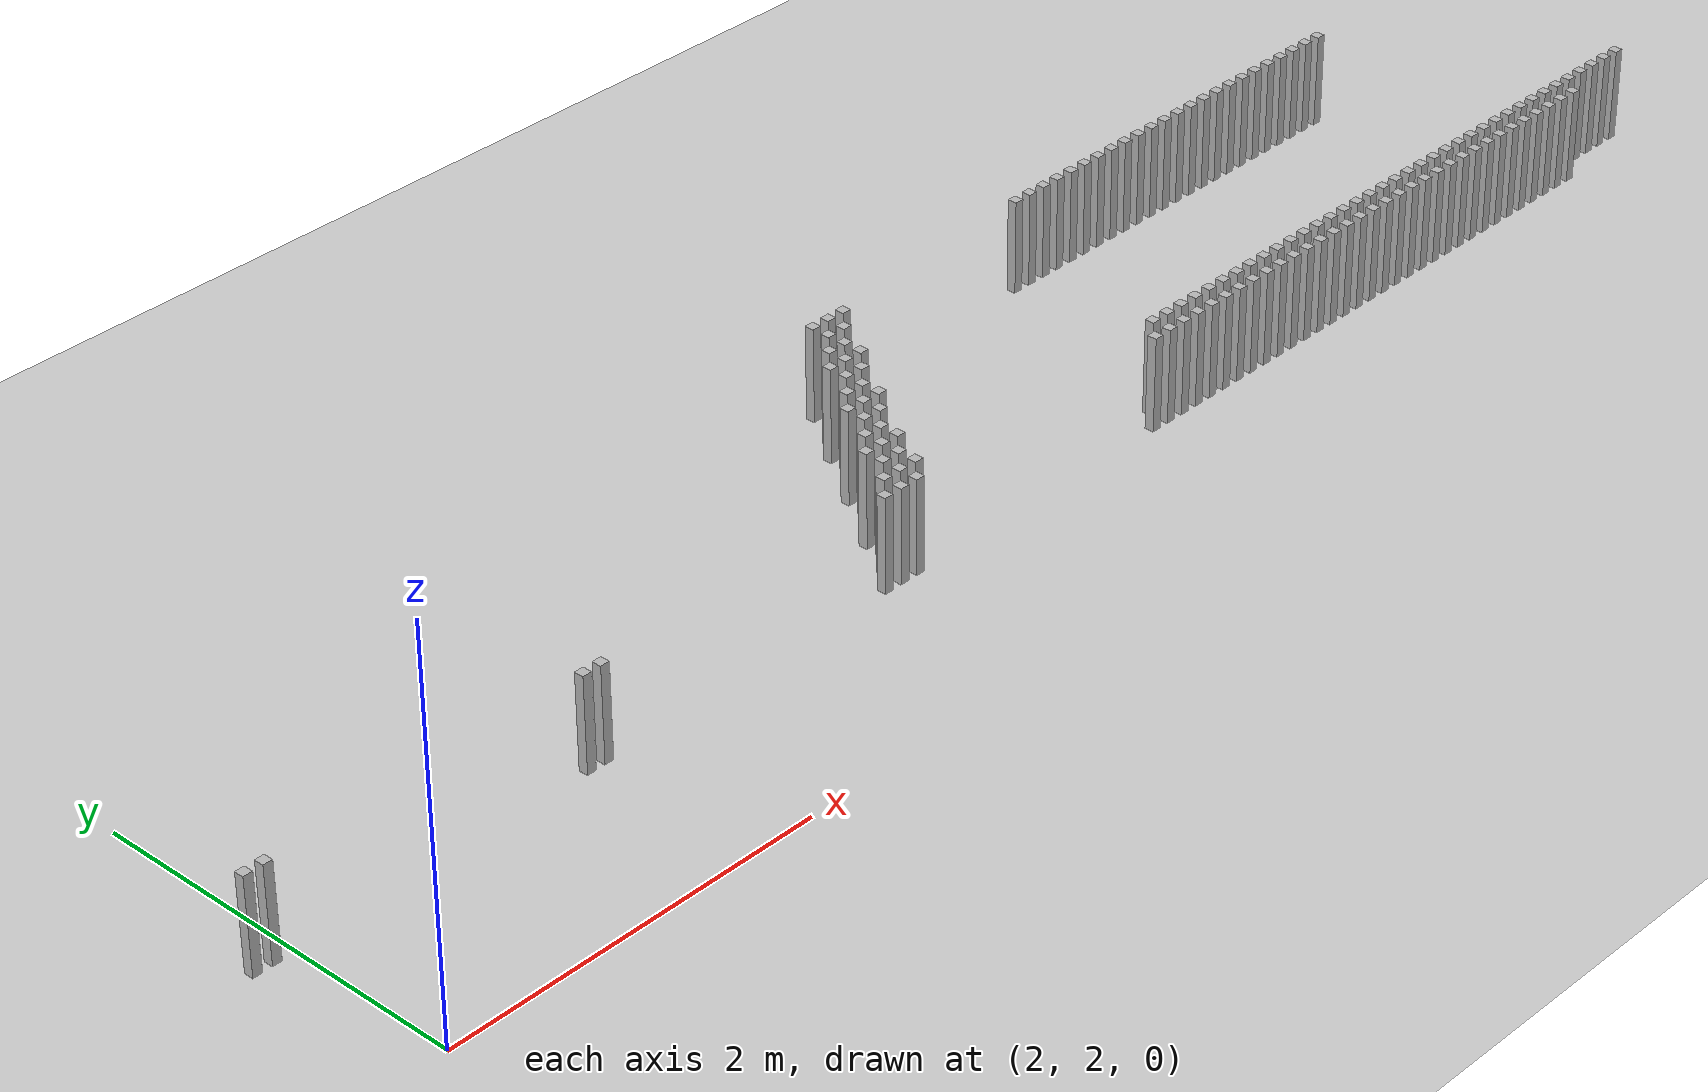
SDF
<sdf version="1.6">
 <world name="default_world">
  <include><uri>model://sun</uri></include>
  <include><uri>model://ground_plane</uri></include>
  <model name="wall_525">
   <static>true</static>
   <link name="link">
    <collision name="collision"><geometry><box><size>0.05 0.05 0.5</size></box></geometry></collision>
    <visual name="visual"><geometry><box><size>0.05 0.05 0.5</size></box></geometry></visual>
    <pose>7.7 4.2 0.25 0 0 0</pose>
   </link>
  </model>
  <model name="wall_526">
   <static>true</static>
   <link name="link">
    <collision name="collision"><geometry><box><size>0.05 0.05 0.5</size></box></geometry></collision>
    <visual name="visual"><geometry><box><size>0.05 0.05 0.5</size></box></geometry></visual>
    <pose>7.800000000000001 4.2 0.25 0 0 0</pose>
   </link>
  </model>
  <model name="wall_527">
   <static>true</static>
   <link name="link">
    <collision name="collision"><geometry><box><size>0.05 0.05 0.5</size></box></geometry></collision>
    <visual name="visual"><geometry><box><size>0.05 0.05 0.5</size></box></geometry></visual>
    <pose>7.9 4.2 0.25 0 0 0</pose>
   </link>
  </model>
  <model name="wall_528">
   <static>true</static>
   <link name="link">
    <collision name="collision"><geometry><box><size>0.05 0.05 0.5</size></box></geometry></collision>
    <visual name="visual"><geometry><box><size>0.05 0.05 0.5</size></box></geometry></visual>
    <pose>8.0 4.2 0.25 0 0 0</pose>
   </link>
  </model>
  <model name="wall_529">
   <static>true</static>
   <link name="link">
    <collision name="collision"><geometry><box><size>0.05 0.05 0.5</size></box></geometry></collision>
    <visual name="visual"><geometry><box><size>0.05 0.05 0.5</size></box></geometry></visual>
    <pose>8.1 4.2 0.25 0 0 0</pose>
   </link>
  </model>
  <model name="wall_530">
   <static>true</static>
   <link name="link">
    <collision name="collision"><geometry><box><size>0.05 0.05 0.5</size></box></geometry></collision>
    <visual name="visual"><geometry><box><size>0.05 0.05 0.5</size></box></geometry></visual>
    <pose>8.200000000000001 4.2 0.25 0 0 0</pose>
   </link>
  </model>
  <model name="wall_531">
   <static>true</static>
   <link name="link">
    <collision name="collision"><geometry><box><size>0.05 0.05 0.5</size></box></geometry></collision>
    <visual name="visual"><geometry><box><size>0.05 0.05 0.5</size></box></geometry></visual>
    <pose>8.3 4.2 0.25 0 0 0</pose>
   </link>
  </model>
  <model name="wall_532">
   <static>true</static>
   <link name="link">
    <collision name="collision"><geometry><box><size>0.05 0.05 0.5</size></box></geometry></collision>
    <visual name="visual"><geometry><box><size>0.05 0.05 0.5</size></box></geometry></visual>
    <pose>8.4 4.2 0.25 0 0 0</pose>
   </link>
  </model>
  <model name="wall_533">
   <static>true</static>
   <link name="link">
    <collision name="collision"><geometry><box><size>0.05 0.05 0.5</size></box></geometry></collision>
    <visual name="visual"><geometry><box><size>0.05 0.05 0.5</size></box></geometry></visual>
    <pose>8.5 4.2 0.25 0 0 0</pose>
   </link>
  </model>
  <model name="wall_534">
   <static>true</static>
   <link name="link">
    <collision name="collision"><geometry><box><size>0.05 0.05 0.5</size></box></geometry></collision>
    <visual name="visual"><geometry><box><size>0.05 0.05 0.5</size></box></geometry></visual>
    <pose>8.6 4.2 0.25 0 0 0</pose>
   </link>
  </model>
  <model name="wall_535">
   <static>true</static>
   <link name="link">
    <collision name="collision"><geometry><box><size>0.05 0.05 0.5</size></box></geometry></collision>
    <visual name="visual"><geometry><box><size>0.05 0.05 0.5</size></box></geometry></visual>
    <pose>8.700000000000001 4.2 0.25 0 0 0</pose>
   </link>
  </model>
  <model name="wall_536">
   <static>true</static>
   <link name="link">
    <collision name="collision"><geometry><box><size>0.05 0.05 0.5</size></box></geometry></collision>
    <visual name="visual"><geometry><box><size>0.05 0.05 0.5</size></box></geometry></visual>
    <pose>8.8 4.2 0.25 0 0 0</pose>
   </link>
  </model>
  <model name="wall_537">
   <static>true</static>
   <link name="link">
    <collision name="collision"><geometry><box><size>0.05 0.05 0.5</size></box></geometry></collision>
    <visual name="visual"><geometry><box><size>0.05 0.05 0.5</size></box></geometry></visual>
    <pose>8.9 4.2 0.25 0 0 0</pose>
   </link>
  </model>
  <model name="wall_538">
   <static>true</static>
   <link name="link">
    <collision name="collision"><geometry><box><size>0.05 0.05 0.5</size></box></geometry></collision>
    <visual name="visual"><geometry><box><size>0.05 0.05 0.5</size></box></geometry></visual>
    <pose>9.0 4.2 0.25 0 0 0</pose>
   </link>
  </model>
  <model name="wall_539">
   <static>true</static>
   <link name="link">
    <collision name="collision"><geometry><box><size>0.05 0.05 0.5</size></box></geometry></collision>
    <visual name="visual"><geometry><box><size>0.05 0.05 0.5</size></box></geometry></visual>
    <pose>9.1 4.2 0.25 0 0 0</pose>
   </link>
  </model>
  <model name="wall_540">
   <static>true</static>
   <link name="link">
    <collision name="collision"><geometry><box><size>0.05 0.05 0.5</size></box></geometry></collision>
    <visual name="visual"><geometry><box><size>0.05 0.05 0.5</size></box></geometry></visual>
    <pose>9.200000000000001 4.2 0.25 0 0 0</pose>
   </link>
  </model>
  <model name="wall_541">
   <static>true</static>
   <link name="link">
    <collision name="collision"><geometry><box><size>0.05 0.05 0.5</size></box></geometry></collision>
    <visual name="visual"><geometry><box><size>0.05 0.05 0.5</size></box></geometry></visual>
    <pose>9.3 4.2 0.25 0 0 0</pose>
   </link>
  </model>
  <model name="wall_542">
   <static>true</static>
   <link name="link">
    <collision name="collision"><geometry><box><size>0.05 0.05 0.5</size></box></geometry></collision>
    <visual name="visual"><geometry><box><size>0.05 0.05 0.5</size></box></geometry></visual>
    <pose>9.4 4.2 0.25 0 0 0</pose>
   </link>
  </model>
  <model name="wall_543">
   <static>true</static>
   <link name="link">
    <collision name="collision"><geometry><box><size>0.05 0.05 0.5</size></box></geometry></collision>
    <visual name="visual"><geometry><box><size>0.05 0.05 0.5</size></box></geometry></visual>
    <pose>9.5 4.2 0.25 0 0 0</pose>
   </link>
  </model>
  <model name="wall_544">
   <static>true</static>
   <link name="link">
    <collision name="collision"><geometry><box><size>0.05 0.05 0.5</size></box></geometry></collision>
    <visual name="visual"><geometry><box><size>0.05 0.05 0.5</size></box></geometry></visual>
    <pose>9.600000000000001 4.2 0.25 0 0 0</pose>
   </link>
  </model>
  <model name="wall_545">
   <static>true</static>
   <link name="link">
    <collision name="collision"><geometry><box><size>0.05 0.05 0.5</size></box></geometry></collision>
    <visual name="visual"><geometry><box><size>0.05 0.05 0.5</size></box></geometry></visual>
    <pose>9.700000000000001 4.2 0.25 0 0 0</pose>
   </link>
  </model>
  <model name="wall_546">
   <static>true</static>
   <link name="link">
    <collision name="collision"><geometry><box><size>0.05 0.05 0.5</size></box></geometry></collision>
    <visual name="visual"><geometry><box><size>0.05 0.05 0.5</size></box></geometry></visual>
    <pose>9.8 4.2 0.25 0 0 0</pose>
   </link>
  </model>
  <model name="wall_547">
   <static>true</static>
   <link name="link">
    <collision name="collision"><geometry><box><size>0.05 0.05 0.5</size></box></geometry></collision>
    <visual name="visual"><geometry><box><size>0.05 0.05 0.5</size></box></geometry></visual>
    <pose>9.9 4.2 0.25 0 0 0</pose>
   </link>
  </model>
  <model name="wall_548">
   <static>true</static>
   <link name="link">
    <collision name="collision"><geometry><box><size>0.05 0.05 0.5</size></box></geometry></collision>
    <visual name="visual"><geometry><box><size>0.05 0.05 0.5</size></box></geometry></visual>
    <pose>10.0 4.2 0.25 0 0 0</pose>
   </link>
  </model>
  <model name="wall_549">
   <static>true</static>
   <link name="link">
    <collision name="collision"><geometry><box><size>0.05 0.05 0.5</size></box></geometry></collision>
    <visual name="visual"><geometry><box><size>0.05 0.05 0.5</size></box></geometry></visual>
    <pose>6.2 4.1000000000000005 0.25 0 0 0</pose>
   </link>
  </model>
  <model name="wall_550">
   <static>true</static>
   <link name="link">
    <collision name="collision"><geometry><box><size>0.05 0.05 0.5</size></box></geometry></collision>
    <visual name="visual"><geometry><box><size>0.05 0.05 0.5</size></box></geometry></visual>
    <pose>6.300000000000001 4.1000000000000005 0.25 0 0 0</pose>
   </link>
  </model>
  <model name="wall_551">
   <static>true</static>
   <link name="link">
    <collision name="collision"><geometry><box><size>0.05 0.05 0.5</size></box></geometry></collision>
    <visual name="visual"><geometry><box><size>0.05 0.05 0.5</size></box></geometry></visual>
    <pose>6.4 4.1000000000000005 0.25 0 0 0</pose>
   </link>
  </model>
  <model name="wall_552">
   <static>true</static>
   <link name="link">
    <collision name="collision"><geometry><box><size>0.05 0.05 0.5</size></box></geometry></collision>
    <visual name="visual"><geometry><box><size>0.05 0.05 0.5</size></box></geometry></visual>
    <pose>6.2 4.0 0.25 0 0 0</pose>
   </link>
  </model>
  <model name="wall_553">
   <static>true</static>
   <link name="link">
    <collision name="collision"><geometry><box><size>0.05 0.05 0.5</size></box></geometry></collision>
    <visual name="visual"><geometry><box><size>0.05 0.05 0.5</size></box></geometry></visual>
    <pose>6.300000000000001 4.0 0.25 0 0 0</pose>
   </link>
  </model>
  <model name="wall_554">
   <static>true</static>
   <link name="link">
    <collision name="collision"><geometry><box><size>0.05 0.05 0.5</size></box></geometry></collision>
    <visual name="visual"><geometry><box><size>0.05 0.05 0.5</size></box></geometry></visual>
    <pose>6.1000000000000005 3.9000000000000004 0.25 0 0 0</pose>
   </link>
  </model>
  <model name="wall_555">
   <static>true</static>
   <link name="link">
    <collision name="collision"><geometry><box><size>0.05 0.05 0.5</size></box></geometry></collision>
    <visual name="visual"><geometry><box><size>0.05 0.05 0.5</size></box></geometry></visual>
    <pose>6.2 3.9000000000000004 0.25 0 0 0</pose>
   </link>
  </model>
  <model name="wall_556">
   <static>true</static>
   <link name="link">
    <collision name="collision"><geometry><box><size>0.05 0.05 0.5</size></box></geometry></collision>
    <visual name="visual"><geometry><box><size>0.05 0.05 0.5</size></box></geometry></visual>
    <pose>6.0 3.8000000000000003 0.25 0 0 0</pose>
   </link>
  </model>
  <model name="wall_557">
   <static>true</static>
   <link name="link">
    <collision name="collision"><geometry><box><size>0.05 0.05 0.5</size></box></geometry></collision>
    <visual name="visual"><geometry><box><size>0.05 0.05 0.5</size></box></geometry></visual>
    <pose>6.1000000000000005 3.8000000000000003 0.25 0 0 0</pose>
   </link>
  </model>
  <model name="wall_558">
   <static>true</static>
   <link name="link">
    <collision name="collision"><geometry><box><size>0.05 0.05 0.5</size></box></geometry></collision>
    <visual name="visual"><geometry><box><size>0.05 0.05 0.5</size></box></geometry></visual>
    <pose>6.2 3.8000000000000003 0.25 0 0 0</pose>
   </link>
  </model>
  <model name="wall_559">
   <static>true</static>
   <link name="link">
    <collision name="collision"><geometry><box><size>0.05 0.05 0.5</size></box></geometry></collision>
    <visual name="visual"><geometry><box><size>0.05 0.05 0.5</size></box></geometry></visual>
    <pose>6.0 3.7 0.25 0 0 0</pose>
   </link>
  </model>
  <model name="wall_560">
   <static>true</static>
   <link name="link">
    <collision name="collision"><geometry><box><size>0.05 0.05 0.5</size></box></geometry></collision>
    <visual name="visual"><geometry><box><size>0.05 0.05 0.5</size></box></geometry></visual>
    <pose>6.1000000000000005 3.7 0.25 0 0 0</pose>
   </link>
  </model>
  <model name="wall_561">
   <static>true</static>
   <link name="link">
    <collision name="collision"><geometry><box><size>0.05 0.05 0.5</size></box></geometry></collision>
    <visual name="visual"><geometry><box><size>0.05 0.05 0.5</size></box></geometry></visual>
    <pose>5.9 3.6 0.25 0 0 0</pose>
   </link>
  </model>
  <model name="wall_562">
   <static>true</static>
   <link name="link">
    <collision name="collision"><geometry><box><size>0.05 0.05 0.5</size></box></geometry></collision>
    <visual name="visual"><geometry><box><size>0.05 0.05 0.5</size></box></geometry></visual>
    <pose>6.0 3.6 0.25 0 0 0</pose>
   </link>
  </model>
  <model name="wall_563">
   <static>true</static>
   <link name="link">
    <collision name="collision"><geometry><box><size>0.05 0.05 0.5</size></box></geometry></collision>
    <visual name="visual"><geometry><box><size>0.05 0.05 0.5</size></box></geometry></visual>
    <pose>5.800000000000001 3.5 0.25 0 0 0</pose>
   </link>
  </model>
  <model name="wall_564">
   <static>true</static>
   <link name="link">
    <collision name="collision"><geometry><box><size>0.05 0.05 0.5</size></box></geometry></collision>
    <visual name="visual"><geometry><box><size>0.05 0.05 0.5</size></box></geometry></visual>
    <pose>5.9 3.5 0.25 0 0 0</pose>
   </link>
  </model>
  <model name="wall_565">
   <static>true</static>
   <link name="link">
    <collision name="collision"><geometry><box><size>0.05 0.05 0.5</size></box></geometry></collision>
    <visual name="visual"><geometry><box><size>0.05 0.05 0.5</size></box></geometry></visual>
    <pose>6.0 3.5 0.25 0 0 0</pose>
   </link>
  </model>
  <model name="wall_566">
   <static>true</static>
   <link name="link">
    <collision name="collision"><geometry><box><size>0.05 0.05 0.5</size></box></geometry></collision>
    <visual name="visual"><geometry><box><size>0.05 0.05 0.5</size></box></geometry></visual>
    <pose>5.800000000000001 3.4000000000000004 0.25 0 0 0</pose>
   </link>
  </model>
  <model name="wall_567">
   <static>true</static>
   <link name="link">
    <collision name="collision"><geometry><box><size>0.05 0.05 0.5</size></box></geometry></collision>
    <visual name="visual"><geometry><box><size>0.05 0.05 0.5</size></box></geometry></visual>
    <pose>5.9 3.4000000000000004 0.25 0 0 0</pose>
   </link>
  </model>
  <model name="wall_568">
   <static>true</static>
   <link name="link">
    <collision name="collision"><geometry><box><size>0.05 0.05 0.5</size></box></geometry></collision>
    <visual name="visual"><geometry><box><size>0.05 0.05 0.5</size></box></geometry></visual>
    <pose>5.7 3.3000000000000003 0.25 0 0 0</pose>
   </link>
  </model>
  <model name="wall_569">
   <static>true</static>
   <link name="link">
    <collision name="collision"><geometry><box><size>0.05 0.05 0.5</size></box></geometry></collision>
    <visual name="visual"><geometry><box><size>0.05 0.05 0.5</size></box></geometry></visual>
    <pose>5.800000000000001 3.3000000000000003 0.25 0 0 0</pose>
   </link>
  </model>
  <model name="wall_570">
   <static>true</static>
   <link name="link">
    <collision name="collision"><geometry><box><size>0.05 0.05 0.5</size></box></geometry></collision>
    <visual name="visual"><geometry><box><size>0.05 0.05 0.5</size></box></geometry></visual>
    <pose>5.6000000000000005 3.2 0.25 0 0 0</pose>
   </link>
  </model>
  <model name="wall_571">
   <static>true</static>
   <link name="link">
    <collision name="collision"><geometry><box><size>0.05 0.05 0.5</size></box></geometry></collision>
    <visual name="visual"><geometry><box><size>0.05 0.05 0.5</size></box></geometry></visual>
    <pose>5.7 3.2 0.25 0 0 0</pose>
   </link>
  </model>
  <model name="wall_572">
   <static>true</static>
   <link name="link">
    <collision name="collision"><geometry><box><size>0.05 0.05 0.5</size></box></geometry></collision>
    <visual name="visual"><geometry><box><size>0.05 0.05 0.5</size></box></geometry></visual>
    <pose>5.800000000000001 3.2 0.25 0 0 0</pose>
   </link>
  </model>
  <model name="wall_573">
   <static>true</static>
   <link name="link">
    <collision name="collision"><geometry><box><size>0.05 0.05 0.5</size></box></geometry></collision>
    <visual name="visual"><geometry><box><size>0.05 0.05 0.5</size></box></geometry></visual>
    <pose>5.6000000000000005 3.1 0.25 0 0 0</pose>
   </link>
  </model>
  <model name="wall_574">
   <static>true</static>
   <link name="link">
    <collision name="collision"><geometry><box><size>0.05 0.05 0.5</size></box></geometry></collision>
    <visual name="visual"><geometry><box><size>0.05 0.05 0.5</size></box></geometry></visual>
    <pose>5.7 3.1 0.25 0 0 0</pose>
   </link>
  </model>
  <model name="wall_575">
   <static>true</static>
   <link name="link">
    <collision name="collision"><geometry><box><size>0.05 0.05 0.5</size></box></geometry></collision>
    <visual name="visual"><geometry><box><size>0.05 0.05 0.5</size></box></geometry></visual>
    <pose>5.5 3.0 0.25 0 0 0</pose>
   </link>
  </model>
  <model name="wall_576">
   <static>true</static>
   <link name="link">
    <collision name="collision"><geometry><box><size>0.05 0.05 0.5</size></box></geometry></collision>
    <visual name="visual"><geometry><box><size>0.05 0.05 0.5</size></box></geometry></visual>
    <pose>5.6000000000000005 3.0 0.25 0 0 0</pose>
   </link>
  </model>
  <model name="wall_577">
   <static>true</static>
   <link name="link">
    <collision name="collision"><geometry><box><size>0.05 0.05 0.5</size></box></geometry></collision>
    <visual name="visual"><geometry><box><size>0.05 0.05 0.5</size></box></geometry></visual>
    <pose>5.7 3.0 0.25 0 0 0</pose>
   </link>
  </model>
  <model name="wall_578">
   <static>true</static>
   <link name="link">
    <collision name="collision"><geometry><box><size>0.05 0.05 0.5</size></box></geometry></collision>
    <visual name="visual"><geometry><box><size>0.05 0.05 0.5</size></box></geometry></visual>
    <pose>7.300000000000001 3.0 0.25 0 0 0</pose>
   </link>
  </model>
  <model name="wall_579">
   <static>true</static>
   <link name="link">
    <collision name="collision"><geometry><box><size>0.05 0.05 0.5</size></box></geometry></collision>
    <visual name="visual"><geometry><box><size>0.05 0.05 0.5</size></box></geometry></visual>
    <pose>7.4 3.0 0.25 0 0 0</pose>
   </link>
  </model>
  <model name="wall_580">
   <static>true</static>
   <link name="link">
    <collision name="collision"><geometry><box><size>0.05 0.05 0.5</size></box></geometry></collision>
    <visual name="visual"><geometry><box><size>0.05 0.05 0.5</size></box></geometry></visual>
    <pose>7.5 3.0 0.25 0 0 0</pose>
   </link>
  </model>
  <model name="wall_581">
   <static>true</static>
   <link name="link">
    <collision name="collision"><geometry><box><size>0.05 0.05 0.5</size></box></geometry></collision>
    <visual name="visual"><geometry><box><size>0.05 0.05 0.5</size></box></geometry></visual>
    <pose>7.6000000000000005 3.0 0.25 0 0 0</pose>
   </link>
  </model>
  <model name="wall_582">
   <static>true</static>
   <link name="link">
    <collision name="collision"><geometry><box><size>0.05 0.05 0.5</size></box></geometry></collision>
    <visual name="visual"><geometry><box><size>0.05 0.05 0.5</size></box></geometry></visual>
    <pose>7.7 3.0 0.25 0 0 0</pose>
   </link>
  </model>
  <model name="wall_583">
   <static>true</static>
   <link name="link">
    <collision name="collision"><geometry><box><size>0.05 0.05 0.5</size></box></geometry></collision>
    <visual name="visual"><geometry><box><size>0.05 0.05 0.5</size></box></geometry></visual>
    <pose>7.800000000000001 3.0 0.25 0 0 0</pose>
   </link>
  </model>
  <model name="wall_584">
   <static>true</static>
   <link name="link">
    <collision name="collision"><geometry><box><size>0.05 0.05 0.5</size></box></geometry></collision>
    <visual name="visual"><geometry><box><size>0.05 0.05 0.5</size></box></geometry></visual>
    <pose>7.9 3.0 0.25 0 0 0</pose>
   </link>
  </model>
  <model name="wall_585">
   <static>true</static>
   <link name="link">
    <collision name="collision"><geometry><box><size>0.05 0.05 0.5</size></box></geometry></collision>
    <visual name="visual"><geometry><box><size>0.05 0.05 0.5</size></box></geometry></visual>
    <pose>8.0 3.0 0.25 0 0 0</pose>
   </link>
  </model>
  <model name="wall_586">
   <static>true</static>
   <link name="link">
    <collision name="collision"><geometry><box><size>0.05 0.05 0.5</size></box></geometry></collision>
    <visual name="visual"><geometry><box><size>0.05 0.05 0.5</size></box></geometry></visual>
    <pose>8.1 3.0 0.25 0 0 0</pose>
   </link>
  </model>
  <model name="wall_587">
   <static>true</static>
   <link name="link">
    <collision name="collision"><geometry><box><size>0.05 0.05 0.5</size></box></geometry></collision>
    <visual name="visual"><geometry><box><size>0.05 0.05 0.5</size></box></geometry></visual>
    <pose>8.200000000000001 3.0 0.25 0 0 0</pose>
   </link>
  </model>
  <model name="wall_588">
   <static>true</static>
   <link name="link">
    <collision name="collision"><geometry><box><size>0.05 0.05 0.5</size></box></geometry></collision>
    <visual name="visual"><geometry><box><size>0.05 0.05 0.5</size></box></geometry></visual>
    <pose>8.3 3.0 0.25 0 0 0</pose>
   </link>
  </model>
  <model name="wall_589">
   <static>true</static>
   <link name="link">
    <collision name="collision"><geometry><box><size>0.05 0.05 0.5</size></box></geometry></collision>
    <visual name="visual"><geometry><box><size>0.05 0.05 0.5</size></box></geometry></visual>
    <pose>8.4 3.0 0.25 0 0 0</pose>
   </link>
  </model>
  <model name="wall_590">
   <static>true</static>
   <link name="link">
    <collision name="collision"><geometry><box><size>0.05 0.05 0.5</size></box></geometry></collision>
    <visual name="visual"><geometry><box><size>0.05 0.05 0.5</size></box></geometry></visual>
    <pose>8.5 3.0 0.25 0 0 0</pose>
   </link>
  </model>
  <model name="wall_591">
   <static>true</static>
   <link name="link">
    <collision name="collision"><geometry><box><size>0.05 0.05 0.5</size></box></geometry></collision>
    <visual name="visual"><geometry><box><size>0.05 0.05 0.5</size></box></geometry></visual>
    <pose>8.6 3.0 0.25 0 0 0</pose>
   </link>
  </model>
  <model name="wall_592">
   <static>true</static>
   <link name="link">
    <collision name="collision"><geometry><box><size>0.05 0.05 0.5</size></box></geometry></collision>
    <visual name="visual"><geometry><box><size>0.05 0.05 0.5</size></box></geometry></visual>
    <pose>8.700000000000001 3.0 0.25 0 0 0</pose>
   </link>
  </model>
  <model name="wall_593">
   <static>true</static>
   <link name="link">
    <collision name="collision"><geometry><box><size>0.05 0.05 0.5</size></box></geometry></collision>
    <visual name="visual"><geometry><box><size>0.05 0.05 0.5</size></box></geometry></visual>
    <pose>8.8 3.0 0.25 0 0 0</pose>
   </link>
  </model>
  <model name="wall_594">
   <static>true</static>
   <link name="link">
    <collision name="collision"><geometry><box><size>0.05 0.05 0.5</size></box></geometry></collision>
    <visual name="visual"><geometry><box><size>0.05 0.05 0.5</size></box></geometry></visual>
    <pose>8.9 3.0 0.25 0 0 0</pose>
   </link>
  </model>
  <model name="wall_595">
   <static>true</static>
   <link name="link">
    <collision name="collision"><geometry><box><size>0.05 0.05 0.5</size></box></geometry></collision>
    <visual name="visual"><geometry><box><size>0.05 0.05 0.5</size></box></geometry></visual>
    <pose>9.0 3.0 0.25 0 0 0</pose>
   </link>
  </model>
  <model name="wall_596">
   <static>true</static>
   <link name="link">
    <collision name="collision"><geometry><box><size>0.05 0.05 0.5</size></box></geometry></collision>
    <visual name="visual"><geometry><box><size>0.05 0.05 0.5</size></box></geometry></visual>
    <pose>9.1 3.0 0.25 0 0 0</pose>
   </link>
  </model>
  <model name="wall_597">
   <static>true</static>
   <link name="link">
    <collision name="collision"><geometry><box><size>0.05 0.05 0.5</size></box></geometry></collision>
    <visual name="visual"><geometry><box><size>0.05 0.05 0.5</size></box></geometry></visual>
    <pose>9.200000000000001 3.0 0.25 0 0 0</pose>
   </link>
  </model>
  <model name="wall_598">
   <static>true</static>
   <link name="link">
    <collision name="collision"><geometry><box><size>0.05 0.05 0.5</size></box></geometry></collision>
    <visual name="visual"><geometry><box><size>0.05 0.05 0.5</size></box></geometry></visual>
    <pose>9.3 3.0 0.25 0 0 0</pose>
   </link>
  </model>
  <model name="wall_599">
   <static>true</static>
   <link name="link">
    <collision name="collision"><geometry><box><size>0.05 0.05 0.5</size></box></geometry></collision>
    <visual name="visual"><geometry><box><size>0.05 0.05 0.5</size></box></geometry></visual>
    <pose>9.4 3.0 0.25 0 0 0</pose>
   </link>
  </model>
  <model name="wall_600">
   <static>true</static>
   <link name="link">
    <collision name="collision"><geometry><box><size>0.05 0.05 0.5</size></box></geometry></collision>
    <visual name="visual"><geometry><box><size>0.05 0.05 0.5</size></box></geometry></visual>
    <pose>9.5 3.0 0.25 0 0 0</pose>
   </link>
  </model>
  <model name="wall_601">
   <static>true</static>
   <link name="link">
    <collision name="collision"><geometry><box><size>0.05 0.05 0.5</size></box></geometry></collision>
    <visual name="visual"><geometry><box><size>0.05 0.05 0.5</size></box></geometry></visual>
    <pose>9.600000000000001 3.0 0.25 0 0 0</pose>
   </link>
  </model>
  <model name="wall_602">
   <static>true</static>
   <link name="link">
    <collision name="collision"><geometry><box><size>0.05 0.05 0.5</size></box></geometry></collision>
    <visual name="visual"><geometry><box><size>0.05 0.05 0.5</size></box></geometry></visual>
    <pose>9.700000000000001 3.0 0.25 0 0 0</pose>
   </link>
  </model>
  <model name="wall_603">
   <static>true</static>
   <link name="link">
    <collision name="collision"><geometry><box><size>0.05 0.05 0.5</size></box></geometry></collision>
    <visual name="visual"><geometry><box><size>0.05 0.05 0.5</size></box></geometry></visual>
    <pose>9.8 3.0 0.25 0 0 0</pose>
   </link>
  </model>
  <model name="wall_604">
   <static>true</static>
   <link name="link">
    <collision name="collision"><geometry><box><size>0.05 0.05 0.5</size></box></geometry></collision>
    <visual name="visual"><geometry><box><size>0.05 0.05 0.5</size></box></geometry></visual>
    <pose>9.9 3.0 0.25 0 0 0</pose>
   </link>
  </model>
  <model name="wall_605">
   <static>true</static>
   <link name="link">
    <collision name="collision"><geometry><box><size>0.05 0.05 0.5</size></box></geometry></collision>
    <visual name="visual"><geometry><box><size>0.05 0.05 0.5</size></box></geometry></visual>
    <pose>10.0 3.0 0.25 0 0 0</pose>
   </link>
  </model>
  <model name="wall_606">
   <static>true</static>
   <link name="link">
    <collision name="collision"><geometry><box><size>0.05 0.05 0.5</size></box></geometry></collision>
    <visual name="visual"><geometry><box><size>0.05 0.05 0.5</size></box></geometry></visual>
    <pose>10.100000000000001 3.0 0.25 0 0 0</pose>
   </link>
  </model>
  <model name="wall_607">
   <static>true</static>
   <link name="link">
    <collision name="collision"><geometry><box><size>0.05 0.05 0.5</size></box></geometry></collision>
    <visual name="visual"><geometry><box><size>0.05 0.05 0.5</size></box></geometry></visual>
    <pose>10.200000000000001 3.0 0.25 0 0 0</pose>
   </link>
  </model>
  <model name="wall_608">
   <static>true</static>
   <link name="link">
    <collision name="collision"><geometry><box><size>0.05 0.05 0.5</size></box></geometry></collision>
    <visual name="visual"><geometry><box><size>0.05 0.05 0.5</size></box></geometry></visual>
    <pose>10.3 3.0 0.25 0 0 0</pose>
   </link>
  </model>
  <model name="wall_609">
   <static>true</static>
   <link name="link">
    <collision name="collision"><geometry><box><size>0.05 0.05 0.5</size></box></geometry></collision>
    <visual name="visual"><geometry><box><size>0.05 0.05 0.5</size></box></geometry></visual>
    <pose>10.4 3.0 0.25 0 0 0</pose>
   </link>
  </model>
  <model name="wall_610">
   <static>true</static>
   <link name="link">
    <collision name="collision"><geometry><box><size>0.05 0.05 0.5</size></box></geometry></collision>
    <visual name="visual"><geometry><box><size>0.05 0.05 0.5</size></box></geometry></visual>
    <pose>10.5 3.0 0.25 0 0 0</pose>
   </link>
  </model>
  <model name="wall_611">
   <static>true</static>
   <link name="link">
    <collision name="collision"><geometry><box><size>0.05 0.05 0.5</size></box></geometry></collision>
    <visual name="visual"><geometry><box><size>0.05 0.05 0.5</size></box></geometry></visual>
    <pose>10.600000000000001 3.0 0.25 0 0 0</pose>
   </link>
  </model>
  <model name="wall_612">
   <static>true</static>
   <link name="link">
    <collision name="collision"><geometry><box><size>0.05 0.05 0.5</size></box></geometry></collision>
    <visual name="visual"><geometry><box><size>0.05 0.05 0.5</size></box></geometry></visual>
    <pose>10.700000000000001 3.0 0.25 0 0 0</pose>
   </link>
  </model>
  <model name="wall_613">
   <static>true</static>
   <link name="link">
    <collision name="collision"><geometry><box><size>0.05 0.05 0.5</size></box></geometry></collision>
    <visual name="visual"><geometry><box><size>0.05 0.05 0.5</size></box></geometry></visual>
    <pose>10.8 3.0 0.25 0 0 0</pose>
   </link>
  </model>
  <model name="wall_614">
   <static>true</static>
   <link name="link">
    <collision name="collision"><geometry><box><size>0.05 0.05 0.5</size></box></geometry></collision>
    <visual name="visual"><geometry><box><size>0.05 0.05 0.5</size></box></geometry></visual>
    <pose>10.9 3.0 0.25 0 0 0</pose>
   </link>
  </model>
  <model name="wall_615">
   <static>true</static>
   <link name="link">
    <collision name="collision"><geometry><box><size>0.05 0.05 0.5</size></box></geometry></collision>
    <visual name="visual"><geometry><box><size>0.05 0.05 0.5</size></box></geometry></visual>
    <pose>1.8 2.9000000000000004 0.25 0 0 0</pose>
   </link>
  </model>
  <model name="wall_616">
   <static>true</static>
   <link name="link">
    <collision name="collision"><geometry><box><size>0.05 0.05 0.5</size></box></geometry></collision>
    <visual name="visual"><geometry><box><size>0.05 0.05 0.5</size></box></geometry></visual>
    <pose>1.9000000000000001 2.9000000000000004 0.25 0 0 0</pose>
   </link>
  </model>
  <model name="wall_617">
   <static>true</static>
   <link name="link">
    <collision name="collision"><geometry><box><size>0.05 0.05 0.5</size></box></geometry></collision>
    <visual name="visual"><geometry><box><size>0.05 0.05 0.5</size></box></geometry></visual>
    <pose>3.6 2.9000000000000004 0.25 0 0 0</pose>
   </link>
  </model>
  <model name="wall_618">
   <static>true</static>
   <link name="link">
    <collision name="collision"><geometry><box><size>0.05 0.05 0.5</size></box></geometry></collision>
    <visual name="visual"><geometry><box><size>0.05 0.05 0.5</size></box></geometry></visual>
    <pose>3.7 2.9000000000000004 0.25 0 0 0</pose>
   </link>
  </model>
  <model name="wall_619">
   <static>true</static>
   <link name="link">
    <collision name="collision"><geometry><box><size>0.05 0.05 0.5</size></box></geometry></collision>
    <visual name="visual"><geometry><box><size>0.05 0.05 0.5</size></box></geometry></visual>
    <pose>5.4 2.9000000000000004 0.25 0 0 0</pose>
   </link>
  </model>
  <model name="wall_620">
   <static>true</static>
   <link name="link">
    <collision name="collision"><geometry><box><size>0.05 0.05 0.5</size></box></geometry></collision>
    <visual name="visual"><geometry><box><size>0.05 0.05 0.5</size></box></geometry></visual>
    <pose>5.5 2.9000000000000004 0.25 0 0 0</pose>
   </link>
  </model>
  <model name="wall_621">
   <static>true</static>
   <link name="link">
    <collision name="collision"><geometry><box><size>0.05 0.05 0.5</size></box></geometry></collision>
    <visual name="visual"><geometry><box><size>0.05 0.05 0.5</size></box></geometry></visual>
    <pose>5.6000000000000005 2.9000000000000004 0.25 0 0 0</pose>
   </link>
  </model>
  <model name="wall_622">
   <static>true</static>
   <link name="link">
    <collision name="collision"><geometry><box><size>0.05 0.05 0.5</size></box></geometry></collision>
    <visual name="visual"><geometry><box><size>0.05 0.05 0.5</size></box></geometry></visual>
    <pose>7.2 2.9000000000000004 0.25 0 0 0</pose>
   </link>
  </model>
  <model name="wall_623">
   <static>true</static>
   <link name="link">
    <collision name="collision"><geometry><box><size>0.05 0.05 0.5</size></box></geometry></collision>
    <visual name="visual"><geometry><box><size>0.05 0.05 0.5</size></box></geometry></visual>
    <pose>7.300000000000001 2.9000000000000004 0.25 0 0 0</pose>
   </link>
  </model>
  <model name="wall_624">
   <static>true</static>
   <link name="link">
    <collision name="collision"><geometry><box><size>0.05 0.05 0.5</size></box></geometry></collision>
    <visual name="visual"><geometry><box><size>0.05 0.05 0.5</size></box></geometry></visual>
    <pose>7.4 2.9000000000000004 0.25 0 0 0</pose>
   </link>
  </model>
  <model name="wall_625">
   <static>true</static>
   <link name="link">
    <collision name="collision"><geometry><box><size>0.05 0.05 0.5</size></box></geometry></collision>
    <visual name="visual"><geometry><box><size>0.05 0.05 0.5</size></box></geometry></visual>
    <pose>7.5 2.9000000000000004 0.25 0 0 0</pose>
   </link>
  </model>
  <model name="wall_626">
   <static>true</static>
   <link name="link">
    <collision name="collision"><geometry><box><size>0.05 0.05 0.5</size></box></geometry></collision>
    <visual name="visual"><geometry><box><size>0.05 0.05 0.5</size></box></geometry></visual>
    <pose>7.6000000000000005 2.9000000000000004 0.25 0 0 0</pose>
   </link>
  </model>
  <model name="wall_627">
   <static>true</static>
   <link name="link">
    <collision name="collision"><geometry><box><size>0.05 0.05 0.5</size></box></geometry></collision>
    <visual name="visual"><geometry><box><size>0.05 0.05 0.5</size></box></geometry></visual>
    <pose>7.7 2.9000000000000004 0.25 0 0 0</pose>
   </link>
  </model>
  <model name="wall_628">
   <static>true</static>
   <link name="link">
    <collision name="collision"><geometry><box><size>0.05 0.05 0.5</size></box></geometry></collision>
    <visual name="visual"><geometry><box><size>0.05 0.05 0.5</size></box></geometry></visual>
    <pose>7.800000000000001 2.9000000000000004 0.25 0 0 0</pose>
   </link>
  </model>
  <model name="wall_629">
   <static>true</static>
   <link name="link">
    <collision name="collision"><geometry><box><size>0.05 0.05 0.5</size></box></geometry></collision>
    <visual name="visual"><geometry><box><size>0.05 0.05 0.5</size></box></geometry></visual>
    <pose>7.9 2.9000000000000004 0.25 0 0 0</pose>
   </link>
  </model>
  <model name="wall_630">
   <static>true</static>
   <link name="link">
    <collision name="collision"><geometry><box><size>0.05 0.05 0.5</size></box></geometry></collision>
    <visual name="visual"><geometry><box><size>0.05 0.05 0.5</size></box></geometry></visual>
    <pose>8.0 2.9000000000000004 0.25 0 0 0</pose>
   </link>
  </model>
  <model name="wall_631">
   <static>true</static>
   <link name="link">
    <collision name="collision"><geometry><box><size>0.05 0.05 0.5</size></box></geometry></collision>
    <visual name="visual"><geometry><box><size>0.05 0.05 0.5</size></box></geometry></visual>
    <pose>8.1 2.9000000000000004 0.25 0 0 0</pose>
   </link>
  </model>
  <model name="wall_632">
   <static>true</static>
   <link name="link">
    <collision name="collision"><geometry><box><size>0.05 0.05 0.5</size></box></geometry></collision>
    <visual name="visual"><geometry><box><size>0.05 0.05 0.5</size></box></geometry></visual>
    <pose>8.200000000000001 2.9000000000000004 0.25 0 0 0</pose>
   </link>
  </model>
  <model name="wall_633">
   <static>true</static>
   <link name="link">
    <collision name="collision"><geometry><box><size>0.05 0.05 0.5</size></box></geometry></collision>
    <visual name="visual"><geometry><box><size>0.05 0.05 0.5</size></box></geometry></visual>
    <pose>8.3 2.9000000000000004 0.25 0 0 0</pose>
   </link>
  </model>
  <model name="wall_634">
   <static>true</static>
   <link name="link">
    <collision name="collision"><geometry><box><size>0.05 0.05 0.5</size></box></geometry></collision>
    <visual name="visual"><geometry><box><size>0.05 0.05 0.5</size></box></geometry></visual>
    <pose>8.4 2.9000000000000004 0.25 0 0 0</pose>
   </link>
  </model>
  <model name="wall_635">
   <static>true</static>
   <link name="link">
    <collision name="collision"><geometry><box><size>0.05 0.05 0.5</size></box></geometry></collision>
    <visual name="visual"><geometry><box><size>0.05 0.05 0.5</size></box></geometry></visual>
    <pose>8.5 2.9000000000000004 0.25 0 0 0</pose>
   </link>
  </model>
  <model name="wall_636">
   <static>true</static>
   <link name="link">
    <collision name="collision"><geometry><box><size>0.05 0.05 0.5</size></box></geometry></collision>
    <visual name="visual"><geometry><box><size>0.05 0.05 0.5</size></box></geometry></visual>
    <pose>8.6 2.9000000000000004 0.25 0 0 0</pose>
   </link>
  </model>
  <model name="wall_637">
   <static>true</static>
   <link name="link">
    <collision name="collision"><geometry><box><size>0.05 0.05 0.5</size></box></geometry></collision>
    <visual name="visual"><geometry><box><size>0.05 0.05 0.5</size></box></geometry></visual>
    <pose>8.700000000000001 2.9000000000000004 0.25 0 0 0</pose>
   </link>
  </model>
  <model name="wall_638">
   <static>true</static>
   <link name="link">
    <collision name="collision"><geometry><box><size>0.05 0.05 0.5</size></box></geometry></collision>
    <visual name="visual"><geometry><box><size>0.05 0.05 0.5</size></box></geometry></visual>
    <pose>8.8 2.9000000000000004 0.25 0 0 0</pose>
   </link>
  </model>
  <model name="wall_639">
   <static>true</static>
   <link name="link">
    <collision name="collision"><geometry><box><size>0.05 0.05 0.5</size></box></geometry></collision>
    <visual name="visual"><geometry><box><size>0.05 0.05 0.5</size></box></geometry></visual>
    <pose>8.9 2.9000000000000004 0.25 0 0 0</pose>
   </link>
  </model>
  <model name="wall_640">
   <static>true</static>
   <link name="link">
    <collision name="collision"><geometry><box><size>0.05 0.05 0.5</size></box></geometry></collision>
    <visual name="visual"><geometry><box><size>0.05 0.05 0.5</size></box></geometry></visual>
    <pose>9.0 2.9000000000000004 0.25 0 0 0</pose>
   </link>
  </model>
  <model name="wall_641">
   <static>true</static>
   <link name="link">
    <collision name="collision"><geometry><box><size>0.05 0.05 0.5</size></box></geometry></collision>
    <visual name="visual"><geometry><box><size>0.05 0.05 0.5</size></box></geometry></visual>
    <pose>9.1 2.9000000000000004 0.25 0 0 0</pose>
   </link>
  </model>
  <model name="wall_642">
   <static>true</static>
   <link name="link">
    <collision name="collision"><geometry><box><size>0.05 0.05 0.5</size></box></geometry></collision>
    <visual name="visual"><geometry><box><size>0.05 0.05 0.5</size></box></geometry></visual>
    <pose>9.200000000000001 2.9000000000000004 0.25 0 0 0</pose>
   </link>
  </model>
  <model name="wall_643">
   <static>true</static>
   <link name="link">
    <collision name="collision"><geometry><box><size>0.05 0.05 0.5</size></box></geometry></collision>
    <visual name="visual"><geometry><box><size>0.05 0.05 0.5</size></box></geometry></visual>
    <pose>9.3 2.9000000000000004 0.25 0 0 0</pose>
   </link>
  </model>
  <model name="wall_644">
   <static>true</static>
   <link name="link">
    <collision name="collision"><geometry><box><size>0.05 0.05 0.5</size></box></geometry></collision>
    <visual name="visual"><geometry><box><size>0.05 0.05 0.5</size></box></geometry></visual>
    <pose>9.4 2.9000000000000004 0.25 0 0 0</pose>
   </link>
  </model>
  <model name="wall_645">
   <static>true</static>
   <link name="link">
    <collision name="collision"><geometry><box><size>0.05 0.05 0.5</size></box></geometry></collision>
    <visual name="visual"><geometry><box><size>0.05 0.05 0.5</size></box></geometry></visual>
    <pose>9.5 2.9000000000000004 0.25 0 0 0</pose>
   </link>
  </model>
  <model name="wall_646">
   <static>true</static>
   <link name="link">
    <collision name="collision"><geometry><box><size>0.05 0.05 0.5</size></box></geometry></collision>
    <visual name="visual"><geometry><box><size>0.05 0.05 0.5</size></box></geometry></visual>
    <pose>9.600000000000001 2.9000000000000004 0.25 0 0 0</pose>
   </link>
  </model>
  <model name="wall_647">
   <static>true</static>
   <link name="link">
    <collision name="collision"><geometry><box><size>0.05 0.05 0.5</size></box></geometry></collision>
    <visual name="visual"><geometry><box><size>0.05 0.05 0.5</size></box></geometry></visual>
    <pose>9.700000000000001 2.9000000000000004 0.25 0 0 0</pose>
   </link>
  </model>
  <model name="wall_648">
   <static>true</static>
   <link name="link">
    <collision name="collision"><geometry><box><size>0.05 0.05 0.5</size></box></geometry></collision>
    <visual name="visual"><geometry><box><size>0.05 0.05 0.5</size></box></geometry></visual>
    <pose>9.8 2.9000000000000004 0.25 0 0 0</pose>
   </link>
  </model>
  <model name="wall_649">
   <static>true</static>
   <link name="link">
    <collision name="collision"><geometry><box><size>0.05 0.05 0.5</size></box></geometry></collision>
    <visual name="visual"><geometry><box><size>0.05 0.05 0.5</size></box></geometry></visual>
    <pose>9.9 2.9000000000000004 0.25 0 0 0</pose>
   </link>
  </model>
  <model name="wall_650">
   <static>true</static>
   <link name="link">
    <collision name="collision"><geometry><box><size>0.05 0.05 0.5</size></box></geometry></collision>
    <visual name="visual"><geometry><box><size>0.05 0.05 0.5</size></box></geometry></visual>
    <pose>10.0 2.9000000000000004 0.25 0 0 0</pose>
   </link>
  </model>
  <model name="wall_651">
   <static>true</static>
   <link name="link">
    <collision name="collision"><geometry><box><size>0.05 0.05 0.5</size></box></geometry></collision>
    <visual name="visual"><geometry><box><size>0.05 0.05 0.5</size></box></geometry></visual>
    <pose>10.100000000000001 2.9000000000000004 0.25 0 0 0</pose>
   </link>
  </model>
  <model name="wall_652">
   <static>true</static>
   <link name="link">
    <collision name="collision"><geometry><box><size>0.05 0.05 0.5</size></box></geometry></collision>
    <visual name="visual"><geometry><box><size>0.05 0.05 0.5</size></box></geometry></visual>
    <pose>10.200000000000001 2.9000000000000004 0.25 0 0 0</pose>
   </link>
  </model>
  <model name="wall_653">
   <static>true</static>
   <link name="link">
    <collision name="collision"><geometry><box><size>0.05 0.05 0.5</size></box></geometry></collision>
    <visual name="visual"><geometry><box><size>0.05 0.05 0.5</size></box></geometry></visual>
    <pose>10.3 2.9000000000000004 0.25 0 0 0</pose>
   </link>
  </model>
  <model name="wall_654">
   <static>true</static>
   <link name="link">
    <collision name="collision"><geometry><box><size>0.05 0.05 0.5</size></box></geometry></collision>
    <visual name="visual"><geometry><box><size>0.05 0.05 0.5</size></box></geometry></visual>
    <pose>10.4 2.9000000000000004 0.25 0 0 0</pose>
   </link>
  </model>
 </world>
</sdf>
